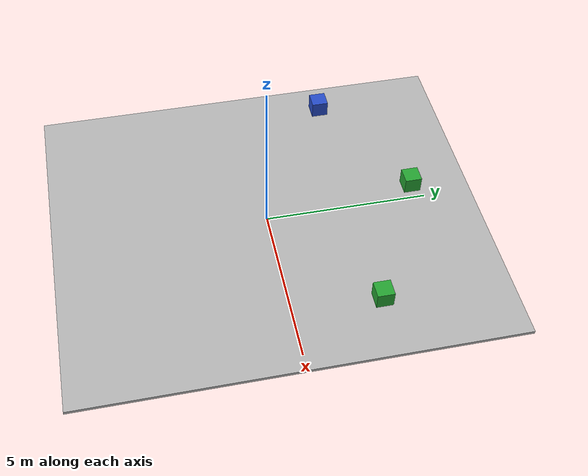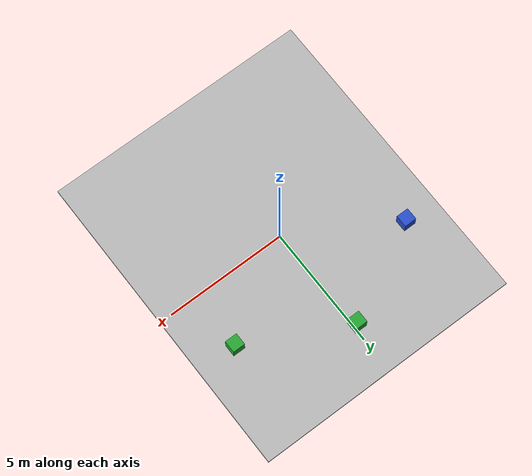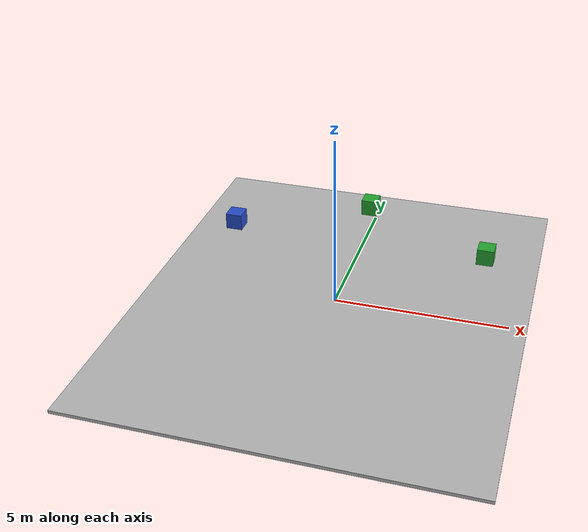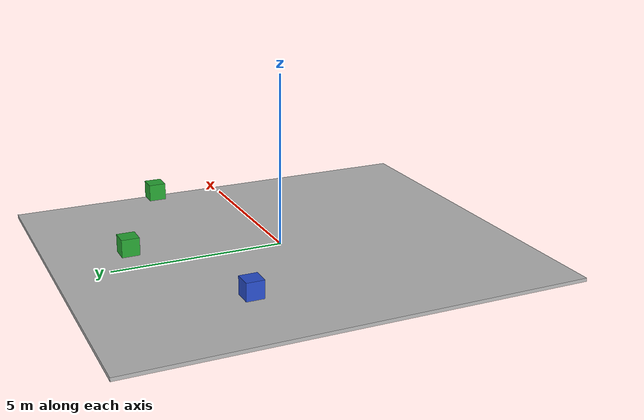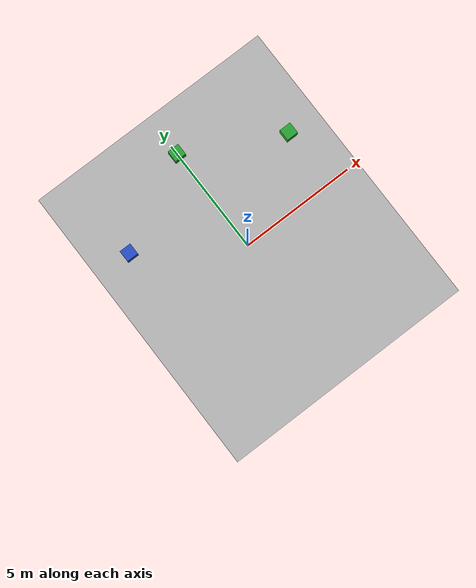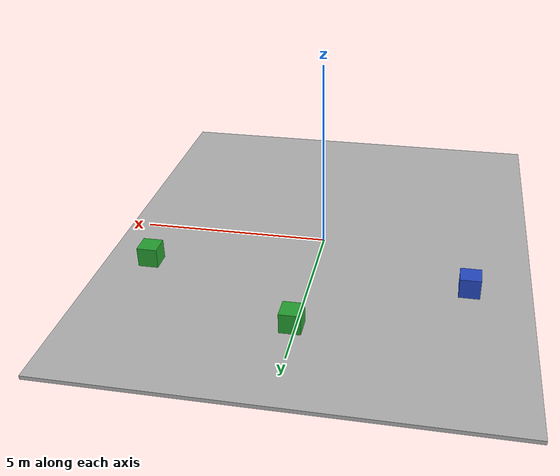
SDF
<sdf version="1.4">
  <world name="default">
    <scene>
      <ambient>0.8 0.8 0.8 1</ambient>
      <background>0.7 0.7 0.7 1</background>
      <shadows>true</shadows>
    </scene>

    <!-- A global light source -->
    <include>
      <uri>model://sun</uri>
      <pose> -2.0 2.0 2.0 0 0 0</pose>
    </include>

    <!-- A ground plane -->
    <include>
      <uri>model://circuito/pisosala</uri>
    </include>

  <!-- caixa_azul -->
    <include>
      <uri>model://circuito/cubo_azul</uri>
      <pose> -3.92 2.50 0.75 0 0 0</pose>
    </include>

  <!-- caixa_vermelho -->
    <include>
      <uri>model://circuito/cubo_vermelho</uri>
      <pose> -0.058 4.5 0.75 0 0 0</pose>
    </include>

  <!-- caixa_verde -->
    <include>
      <uri>model://circuito/cubo_verde</uri>
      <pose> 3.95 2.5 0.75 0 0 0</pose>
    </include>

    <physics type="ode">
      <real_time_update_rate>1000.0</real_time_update_rate>
      <max_step_size>0.001</max_step_size>
      <real_time_factor>1</real_time_factor>
      <ode>
        <solver>
          <type>quick</type>
          <iters>150</iters>
          <precon_iters>0</precon_iters>
          <sor>1.400000</sor>
          <use_dynamic_moi_rescaling>1</use_dynamic_moi_rescaling>
        </solver>
        <constraints>
          <cfm>0.00001</cfm>
          <erp>0.2</erp>
          <contact_max_correcting_vel>2000.000000</contact_max_correcting_vel>
          <contact_surface_layer>0.01000</contact_surface_layer>
        </constraints>
      </ode>
    </physics>

    <gui fullscreen='0'>
      <camera name='user_camera'>
        <pose frame=''>0.238775 -6.8831 10.8485 -0 0.979642 1.5602</pose>
        <view_controller>orbit</view_controller>
        <projection_type>perspective</projection_type>
      </camera>
    </gui>

  </world>

</sdf>

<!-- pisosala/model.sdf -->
<sdf version="1.6">
  <model name="pisosala_forca">
    <static>true</static>
    <link name="course_link">
      <collision name="course_collision">
        <geometry>
          <plane>
            <normal>0 0 1</normal>
            <size>10 13</size>
          </plane>
        </geometry>
        <surface>
          <friction>
            <ode>
              <mu>100</mu>
              <mu2>50</mu2>
            </ode>
          </friction>
        </surface>
      </collision>
      <visual name="course_visual">
        <cast_shadows>false</cast_shadows>
        <geometry>
          <mesh>
            <uri>model://forca/pisosala/materials/scripts/piso.dae</uri>
            <scale>1 1 1</scale>
          </mesh>
        </geometry>
      </visual>
    </link>
  </model>
</sdf>

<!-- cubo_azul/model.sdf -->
<sdf version='1.6'>
  <model name='cubo'>
    <link name='link'>
      <inertial>
        <mass>1</mass>
        <inertia>
          <ixx>0.166667</ixx>
          <ixy>0</ixy>
          <ixz>0</ixz>
          <iyy>0.166667</iyy>
          <iyz>0</iyz>
          <izz>0.166667</izz>
        </inertia>
        <pose frame=''>0 0 0 0 -0 0</pose>
      </inertial>
      <self_collide>0</self_collide>
      <enable_wind>0</enable_wind>
      <kinematic>0</kinematic>
      <pose frame=''>0 0 0 0 -0 0</pose>
      <gravity>1</gravity>
      <visual name='visual'>
        <geometry>
          <box>
            <size>0.5 0.5 0.5</size>
          </box>
        </geometry>
         <material>
          <script>
            <uri>file://media/materials/scripts/gazebo.material</uri>
            <name>Gazebo/Blue</name>
          </script>
          <ambient>0 0.5 1 1</ambient>
          <shader type='pixel'>
            <normal_map>__default__</normal_map>
          </shader>
          <diffuse>0 0 1 1</diffuse>
          <specular>0 0 1 1</specular>
          <emissive>0 0 1 1</emissive>
        </material>
        <pose frame=''>0 0 0 0 -0 0</pose>
        <transparency>0</transparency>
        <cast_shadows>1</cast_shadows>
      </visual>
      <collision name='collision'>
        <laser_retro>0</laser_retro>
        <max_contacts>10</max_contacts>
        <pose frame=''>0 0 0 0 -0 0</pose>
        <geometry>
          <box>
            <size>0.5 0.5 0.5</size>
          </box>
        </geometry>
        <surface>
          <friction>
            <ode>
              <mu>1</mu>
              <mu2>1</mu2>
              <fdir1>0 0 0</fdir1>
              <slip1>0</slip1>
              <slip2>0</slip2>
            </ode>
            <torsional>
              <coefficient>1</coefficient>
              <patch_radius>0</patch_radius>
              <surface_radius>0</surface_radius>
              <use_patch_radius>1</use_patch_radius>
              <ode>
                <slip>0</slip>
              </ode>
            </torsional>
          </friction>
          <bounce>
            <restitution_coefficient>0</restitution_coefficient>
            <threshold>1e+06</threshold>
          </bounce>
          <contact>
            <collide_without_contact>0</collide_without_contact>
            <collide_without_contact_bitmask>1</collide_without_contact_bitmask>
            <collide_bitmask>1</collide_bitmask>
            <ode>
              <soft_cfm>0</soft_cfm>
              <soft_erp>0.2</soft_erp>
              <kp>1e+13</kp>
              <kd>1</kd>
              <max_vel>0.01</max_vel>
              <min_depth>0</min_depth>
            </ode>
            <bullet>
              <split_impulse>1</split_impulse>
              <split_impulse_penetration_threshold>-0.01</split_impulse_penetration_threshold>
              <soft_cfm>0</soft_cfm>
              <soft_erp>0.2</soft_erp>
              <kp>1e+13</kp>
              <kd>1</kd>
            </bullet>
          </contact>
        </surface>
      </collision>
    </link>
    <static>0</static>
    <allow_auto_disable>1</allow_auto_disable>
  </model>
</sdf>

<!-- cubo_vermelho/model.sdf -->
<sdf version='1.7'>
  <model name='cubo'>
    <link name='link'>
      <inertial>
        <mass>1</mass>
        <inertia>
          <ixx>0.166667</ixx>
          <ixy>0</ixy>
          <ixz>0</ixz>
          <iyy>0.166667</iyy>
          <iyz>0</iyz>
          <izz>0.166667</izz>
        </inertia>
        <pose>0 0 0 0 -0 0</pose>
      </inertial>
      <self_collide>0</self_collide>
      <enable_wind>0</enable_wind>
      <kinematic>0</kinematic>
      <pose>0 0 0 0 -0 0</pose>
      <gravity>1</gravity>
      <visual name='visual'>
        <geometry>
          <box>
            <size>0.5 0.5 0.5</size>
          </box>
        </geometry>
        <material>
          <script>
            <uri>file://media/materials/scripts/gazebo.material</uri>
            <name>Gazebo/Green</name>
          </script>
          <ambient>1 0 0.3 1</ambient>
          <shader type='pixel'>
            <normal_map>__default__</normal_map>
          </shader>
          <lighting>1</lighting>
          <emissive>1 0 0.3 1</emissive>
          <diffuse>1 0 0.3 1</diffuse>
          <specular>1 0 0.3 1</specular>
        </material>
        <pose>0 0 0 0 -0 0</pose>
        <transparency>0</transparency>
        <cast_shadows>1</cast_shadows>
      </visual>
      <collision name='collision'>
        <laser_retro>0</laser_retro>
        <max_contacts>10</max_contacts>
        <pose>0 0 0 0 -0 0</pose>
        <geometry>
          <box>
            <size>0.5 0.5 0.5</size>
          </box>
        </geometry>
        <surface>
          <friction>
            <ode>
              <mu>1</mu>
              <mu2>1</mu2>
              <fdir1>0 0 0</fdir1>
              <slip1>0</slip1>
              <slip2>0</slip2>
            </ode>
            <torsional>
              <coefficient>1</coefficient>
              <patch_radius>0</patch_radius>
              <surface_radius>0</surface_radius>
              <use_patch_radius>1</use_patch_radius>
              <ode>
                <slip>0</slip>
              </ode>
            </torsional>
          </friction>
          <bounce>
            <restitution_coefficient>0</restitution_coefficient>
            <threshold>1e+06</threshold>
          </bounce>
          <contact>
            <collide_without_contact>0</collide_without_contact>
            <collide_without_contact_bitmask>1</collide_without_contact_bitmask>
            <collide_bitmask>1</collide_bitmask>
            <ode>
              <soft_cfm>0</soft_cfm>
              <soft_erp>0.2</soft_erp>
              <kp>1e+13</kp>
              <kd>1</kd>
              <max_vel>0.01</max_vel>
              <min_depth>0</min_depth>
            </ode>
            <bullet>
              <split_impulse>1</split_impulse>
              <split_impulse_penetration_threshold>-0.01</split_impulse_penetration_threshold>
              <soft_cfm>0</soft_cfm>
              <soft_erp>0.2</soft_erp>
              <kp>1e+13</kp>
              <kd>1</kd>
            </bullet>
          </contact>
        </surface>
      </collision>
    </link>
    <static>0</static>
    <allow_auto_disable>1</allow_auto_disable>
  </model>
</sdf>

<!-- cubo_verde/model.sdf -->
<sdf version='1.6'>
  <model name='cubo'>
    <link name='link'>
      <inertial>
        <mass>1</mass>
        <inertia>
          <ixx>0.166667</ixx>
          <ixy>0</ixy>
          <ixz>0</ixz>
          <iyy>0.166667</iyy>
          <iyz>0</iyz>
          <izz>0.166667</izz>
        </inertia>
        <pose frame=''>0 0 0 0 -0 0</pose>
      </inertial>
      <self_collide>0</self_collide>
      <enable_wind>0</enable_wind>
      <kinematic>0</kinematic>
      <pose frame=''>0 0 0 0 -0 0</pose>
      <gravity>1</gravity>
      <visual name='visual'>
        <geometry>
          <box>
            <size>0.5 0.5 0.5</size>
          </box>
        </geometry>
             <material>
          <script>
            <uri>file://media/materials/scripts/gazebo.material</uri>
            <name>Gazebo/Green</name>
          </script>
          <ambient>0 1 0 1</ambient>
          <shader type='pixel'>
            <normal_map>__default__</normal_map>
          </shader>
          <lighting>1</lighting>
          <emissive>0 1 0.5 1</emissive>
          <diffuse>0 1 0.5 1</diffuse>
          <specular>0 1 0.5 1</specular>
        </material>
        <pose frame=''>0 0 0 0 -0 0</pose>
        <transparency>0</transparency>
        <cast_shadows>1</cast_shadows>
      </visual>
      <collision name='collision'>
        <laser_retro>0</laser_retro>
        <max_contacts>10</max_contacts>
        <pose frame=''>0 0 0 0 -0 0</pose>
        <geometry>
          <box>
            <size>0.5 0.5 0.5</size>
          </box>
        </geometry>
        <surface>
          <friction>
            <ode>
              <mu>1</mu>
              <mu2>1</mu2>
              <fdir1>0 0 0</fdir1>
              <slip1>0</slip1>
              <slip2>0</slip2>
            </ode>
            <torsional>
              <coefficient>1</coefficient>
              <patch_radius>0</patch_radius>
              <surface_radius>0</surface_radius>
              <use_patch_radius>1</use_patch_radius>
              <ode>
                <slip>0</slip>
              </ode>
            </torsional>
          </friction>
          <bounce>
            <restitution_coefficient>0</restitution_coefficient>
            <threshold>1e+06</threshold>
          </bounce>
          <contact>
            <collide_without_contact>0</collide_without_contact>
            <collide_without_contact_bitmask>1</collide_without_contact_bitmask>
            <collide_bitmask>1</collide_bitmask>
            <ode>
              <soft_cfm>0</soft_cfm>
              <soft_erp>0.2</soft_erp>
              <kp>1e+13</kp>
              <kd>1</kd>
              <max_vel>0.01</max_vel>
              <min_depth>0</min_depth>
            </ode>
            <bullet>
              <split_impulse>1</split_impulse>
              <split_impulse_penetration_threshold>-0.01</split_impulse_penetration_threshold>
              <soft_cfm>0</soft_cfm>
              <soft_erp>0.2</soft_erp>
              <kp>1e+13</kp>
              <kd>1</kd>
            </bullet>
          </contact>
        </surface>
      </collision>
    </link>
    <static>0</static>
    <allow_auto_disable>1</allow_auto_disable>
  </model>
</sdf>
